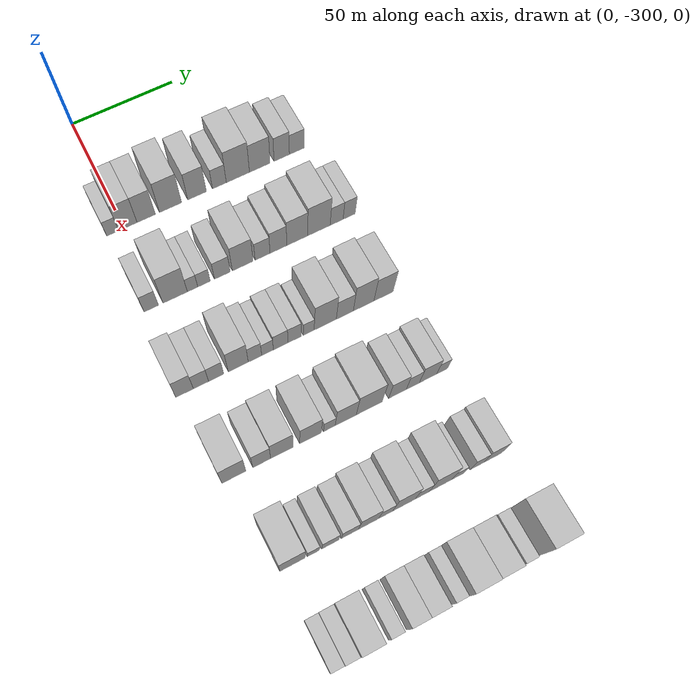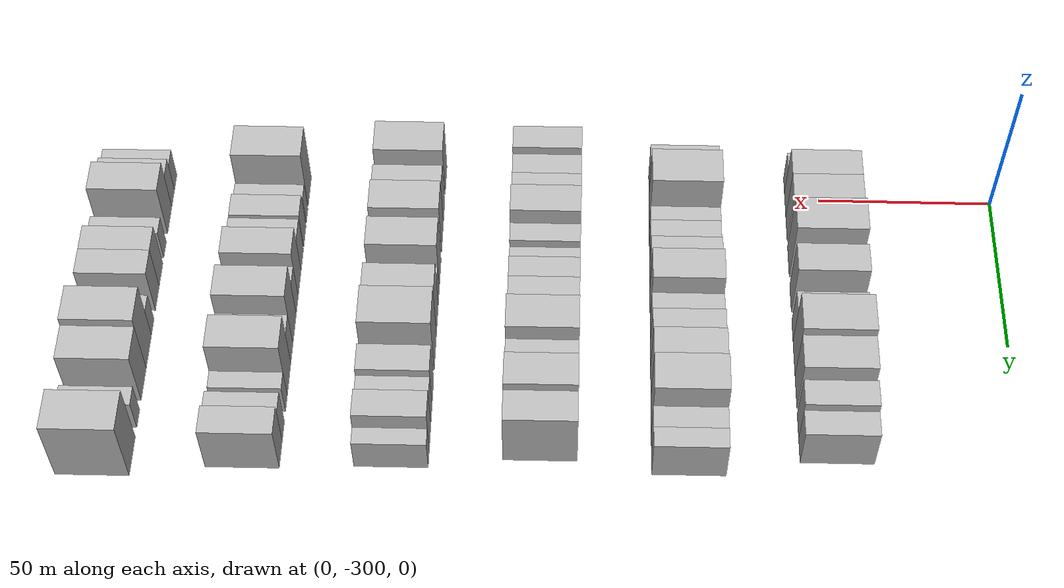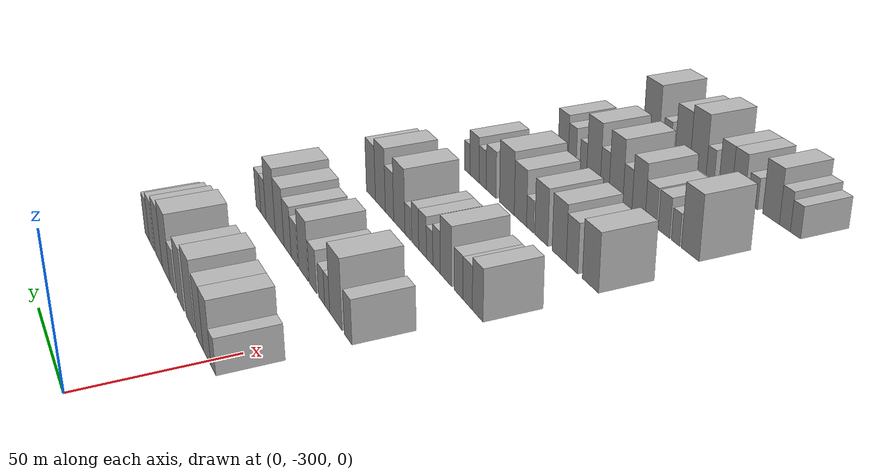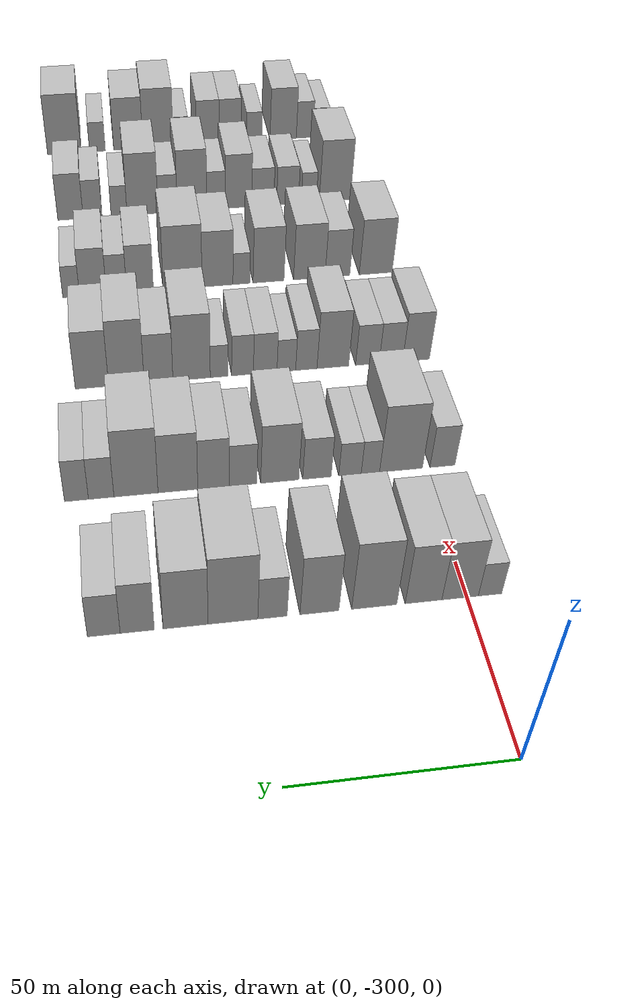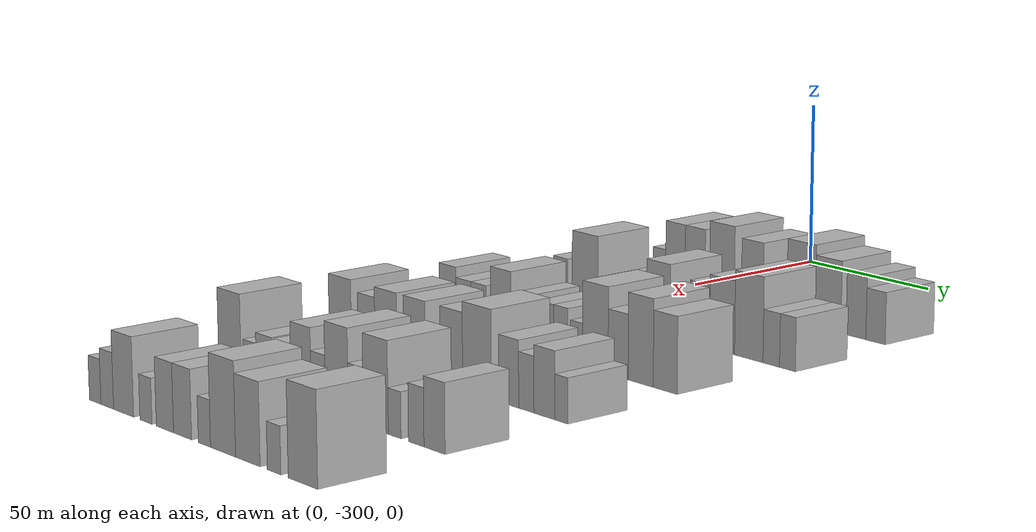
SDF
<sdf version="1.6">
 <world name="default">
  <model name="building_33">
   <static>1</static>
   <pose>50.0000 -305.4539 0 0.000000 0.000000 0.000000</pose>
   <link name="link">
    <pose>0 0 6.00 0 0 0</pose>
    <collision name="collision"><geometry><box><size>20.0000 5.6317 12.0000</size></box></geometry></collision>
    <visual name="visual">
     <cast_shadows>0</cast_shadows>
     <geometry><box><size>20.0000 5.6317 12.0000</size></box></geometry>
     <material>
      <script>
       <uri>model://HANNAS_wall/materials/scripts</uri>
       <uri>model://HANNAS_wall/materials/textures</uri>
       <name>vrc/HANNAS_wall</name>
      </script>
     </material>
    </visual>
   </link>
  </model>
  <model name="building_34">
   <static>1</static>
   <pose>50.0000 -298.2735 0 0.000000 0.000000 0.000000</pose>
   <link name="link">
    <pose>0 0 10.50 0 0 0</pose>
    <collision name="collision"><geometry><box><size>20.0000 8.7291 21.0000</size></box></geometry></collision>
    <visual name="visual">
     <cast_shadows>0</cast_shadows>
     <geometry><box><size>20.0000 8.7291 21.0000</size></box></geometry>
     <material>
      <script>
       <uri>model://HANNAS_wall/materials/scripts</uri>
       <uri>model://HANNAS_wall/materials/textures</uri>
       <name>vrc/HANNAS_wall</name>
      </script>
     </material>
    </visual>
   </link>
  </model>
  <model name="building_35">
   <static>1</static>
   <pose>50.0000 -289.5481 0 0.000000 0.000000 0.000000</pose>
   <link name="link">
    <pose>0 0 10.50 0 0 0</pose>
    <collision name="collision"><geometry><box><size>20.0000 8.7217 21.0000</size></box></geometry></collision>
    <visual name="visual">
     <cast_shadows>0</cast_shadows>
     <geometry><box><size>20.0000 8.7217 21.0000</size></box></geometry>
     <material>
      <script>
       <uri>model://HANNAS_wall/materials/scripts</uri>
       <uri>model://HANNAS_wall/materials/textures</uri>
       <name>vrc/HANNAS_wall</name>
      </script>
     </material>
    </visual>
   </link>
  </model>
  <model name="building_36">
   <static>1</static>
   <pose>50.0000 -277.8640 0 0.000000 0.000000 0.000000</pose>
   <link name="link">
    <pose>0 0 12.00 0 0 0</pose>
    <collision name="collision"><geometry><box><size>20.0000 10.6465 24.0000</size></box></geometry></collision>
    <visual name="visual">
     <cast_shadows>0</cast_shadows>
     <geometry><box><size>20.0000 10.6465 24.0000</size></box></geometry>
     <material>
      <script>
       <uri>model://HANNAS_wall/materials/scripts</uri>
       <uri>model://HANNAS_wall/materials/textures</uri>
       <name>vrc/HANNAS_wall</name>
      </script>
     </material>
    </visual>
   </link>
  </model>
  <model name="building_37">
   <static>1</static>
   <pose>50.0000 -264.9912 0 0.000000 0.000000 0.000000</pose>
   <link name="link">
    <pose>0 0 10.50 0 0 0</pose>
    <collision name="collision"><geometry><box><size>20.0000 9.0991 21.0000</size></box></geometry></collision>
    <visual name="visual">
     <cast_shadows>0</cast_shadows>
     <geometry><box><size>20.0000 9.0991 21.0000</size></box></geometry>
     <material>
      <script>
       <uri>model://HANNAS_wall/materials/scripts</uri>
       <uri>model://HANNAS_wall/materials/textures</uri>
       <name>vrc/HANNAS_wall</name>
      </script>
     </material>
    </visual>
   </link>
  </model>
  <model name="building_38">
   <static>1</static>
   <pose>50.0000 -254.0415 0 0.000000 0.000000 0.000000</pose>
   <link name="link">
    <pose>0 0 7.50 0 0 0</pose>
    <collision name="collision"><geometry><box><size>20.0000 6.8003 15.0000</size></box></geometry></collision>
    <visual name="visual">
     <cast_shadows>0</cast_shadows>
     <geometry><box><size>20.0000 6.8003 15.0000</size></box></geometry>
     <material>
      <script>
       <uri>model://HANNAS_wall/materials/scripts</uri>
       <uri>model://HANNAS_wall/materials/textures</uri>
       <name>vrc/HANNAS_wall</name>
      </script>
     </material>
    </visual>
   </link>
  </model>
  <model name="building_39">
   <static>1</static>
   <pose>50.0000 -244.8946 0 0.000000 0.000000 0.000000</pose>
   <link name="link">
    <pose>0 0 12.00 0 0 0</pose>
    <collision name="collision"><geometry><box><size>20.0000 11.4935 24.0000</size></box></geometry></collision>
    <visual name="visual">
     <cast_shadows>0</cast_shadows>
     <geometry><box><size>20.0000 11.4935 24.0000</size></box></geometry>
     <material>
      <script>
       <uri>model://HANNAS_wall/materials/scripts</uri>
       <uri>model://HANNAS_wall/materials/textures</uri>
       <name>vrc/HANNAS_wall</name>
      </script>
     </material>
    </visual>
   </link>
  </model>
  <model name="building_40">
   <static>1</static>
   <pose>50.0000 -234.0083 0 0.000000 0.000000 0.000000</pose>
   <link name="link">
    <pose>0 0 10.50 0 0 0</pose>
    <collision name="collision"><geometry><box><size>20.0000 10.2791 21.0000</size></box></geometry></collision>
    <visual name="visual">
     <cast_shadows>0</cast_shadows>
     <geometry><box><size>20.0000 10.2791 21.0000</size></box></geometry>
     <material>
      <script>
       <uri>model://HANNAS_wall/materials/scripts</uri>
       <uri>model://HANNAS_wall/materials/textures</uri>
       <name>vrc/HANNAS_wall</name>
      </script>
     </material>
    </visual>
   </link>
  </model>
  <model name="building_41">
   <static>1</static>
   <pose>50.0000 -222.9935 0 0.000000 0.000000 0.000000</pose>
   <link name="link">
    <pose>0 0 9.00 0 0 0</pose>
    <collision name="collision"><geometry><box><size>20.0000 7.7505 18.0000</size></box></geometry></collision>
    <visual name="visual">
     <cast_shadows>0</cast_shadows>
     <geometry><box><size>20.0000 7.7505 18.0000</size></box></geometry>
     <material>
      <script>
       <uri>model://HANNAS_wall/materials/scripts</uri>
       <uri>model://HANNAS_wall/materials/textures</uri>
       <name>vrc/HANNAS_wall</name>
      </script>
     </material>
    </visual>
   </link>
  </model>
  <model name="building_42">
   <static>1</static>
   <pose>50.0000 -215.4051 0 0.000000 0.000000 0.000000</pose>
   <link name="link">
    <pose>0 0 7.50 0 0 0</pose>
    <collision name="collision"><geometry><box><size>20.0000 7.4261 15.0000</size></box></geometry></collision>
    <visual name="visual">
     <cast_shadows>0</cast_shadows>
     <geometry><box><size>20.0000 7.4261 15.0000</size></box></geometry>
     <material>
      <script>
       <uri>model://HANNAS_wall/materials/scripts</uri>
       <uri>model://HANNAS_wall/materials/textures</uri>
       <name>vrc/HANNAS_wall</name>
      </script>
     </material>
    </visual>
   </link>
  </model>
  <model name="building_175">
   <static>1</static>
   <pose>90.0000 -304.8814 0 0.000000 0.000000 0.000000</pose>
   <link name="link">
    <pose>0 0 7.50 0 0 0</pose>
    <collision name="collision"><geometry><box><size>20.0000 6.6616 15.0000</size></box></geometry></collision>
    <visual name="visual">
     <cast_shadows>0</cast_shadows>
     <geometry><box><size>20.0000 6.6616 15.0000</size></box></geometry>
     <material>
      <script>
       <uri>model://HANNAS_wall/materials/scripts</uri>
       <uri>model://HANNAS_wall/materials/textures</uri>
       <name>vrc/HANNAS_wall</name>
      </script>
     </material>
    </visual>
   </link>
  </model>
  <model name="building_176">
   <static>1</static>
   <pose>90.0000 -293.8821 0 0.000000 0.000000 0.000000</pose>
   <link name="link">
    <pose>0 0 12.00 0 0 0</pose>
    <collision name="collision"><geometry><box><size>20.0000 11.3371 24.0000</size></box></geometry></collision>
    <visual name="visual">
     <cast_shadows>0</cast_shadows>
     <geometry><box><size>20.0000 11.3371 24.0000</size></box></geometry>
     <material>
      <script>
       <uri>model://HANNAS_wall/materials/scripts</uri>
       <uri>model://HANNAS_wall/materials/textures</uri>
       <name>vrc/HANNAS_wall</name>
      </script>
     </material>
    </visual>
   </link>
  </model>
  <model name="building_177">
   <static>1</static>
   <pose>90.0000 -285.7855 0 0.000000 0.000000 0.000000</pose>
   <link name="link">
    <pose>0 0 6.00 0 0 0</pose>
    <collision name="collision"><geometry><box><size>20.0000 4.8560 12.0000</size></box></geometry></collision>
    <visual name="visual">
     <cast_shadows>0</cast_shadows>
     <geometry><box><size>20.0000 4.8560 12.0000</size></box></geometry>
     <material>
      <script>
       <uri>model://HANNAS_wall/materials/scripts</uri>
       <uri>model://HANNAS_wall/materials/textures</uri>
       <name>vrc/HANNAS_wall</name>
      </script>
     </material>
    </visual>
   </link>
  </model>
  <model name="building_178">
   <static>1</static>
   <pose>90.0000 -280.4226 0 0.000000 0.000000 0.000000</pose>
   <link name="link">
    <pose>0 0 6.00 0 0 0</pose>
    <collision name="collision"><geometry><box><size>20.0000 5.8699 12.0000</size></box></geometry></collision>
    <visual name="visual">
     <cast_shadows>0</cast_shadows>
     <geometry><box><size>20.0000 5.8699 12.0000</size></box></geometry>
     <material>
      <script>
       <uri>model://HANNAS_wall/materials/scripts</uri>
       <uri>model://HANNAS_wall/materials/textures</uri>
       <name>vrc/HANNAS_wall</name>
      </script>
     </material>
    </visual>
   </link>
  </model>
  <model name="building_179">
   <static>1</static>
   <pose>90.0000 -271.7702 0 0.000000 0.000000 0.000000</pose>
   <link name="link">
    <pose>0 0 7.50 0 0 0</pose>
    <collision name="collision"><geometry><box><size>20.0000 7.4349 15.0000</size></box></geometry></collision>
    <visual name="visual">
     <cast_shadows>0</cast_shadows>
     <geometry><box><size>20.0000 7.4349 15.0000</size></box></geometry>
     <material>
      <script>
       <uri>model://HANNAS_wall/materials/scripts</uri>
       <uri>model://HANNAS_wall/materials/textures</uri>
       <name>vrc/HANNAS_wall</name>
      </script>
     </material>
    </visual>
   </link>
  </model>
  <model name="building_180">
   <static>1</static>
   <pose>90.0000 -262.1089 0 0.000000 0.000000 0.000000</pose>
   <link name="link">
    <pose>0 0 10.50 0 0 0</pose>
    <collision name="collision"><geometry><box><size>20.0000 9.8876 21.0000</size></box></geometry></collision>
    <visual name="visual">
     <cast_shadows>0</cast_shadows>
     <geometry><box><size>20.0000 9.8876 21.0000</size></box></geometry>
     <material>
      <script>
       <uri>model://HANNAS_wall/materials/scripts</uri>
       <uri>model://HANNAS_wall/materials/textures</uri>
       <name>vrc/HANNAS_wall</name>
      </script>
     </material>
    </visual>
   </link>
  </model>
  <model name="building_181">
   <static>1</static>
   <pose>90.0000 -252.5925 0 0.000000 0.000000 0.000000</pose>
   <link name="link">
    <pose>0 0 7.50 0 0 0</pose>
    <collision name="collision"><geometry><box><size>20.0000 7.1453 15.0000</size></box></geometry></collision>
    <visual name="visual">
     <cast_shadows>0</cast_shadows>
     <geometry><box><size>20.0000 7.1453 15.0000</size></box></geometry>
     <material>
      <script>
       <uri>model://HANNAS_wall/materials/scripts</uri>
       <uri>model://HANNAS_wall/materials/textures</uri>
       <name>vrc/HANNAS_wall</name>
      </script>
     </material>
    </visual>
   </link>
  </model>
  <model name="building_182">
   <static>1</static>
   <pose>90.0000 -244.9927 0 0.000000 0.000000 0.000000</pose>
   <link name="link">
    <pose>0 0 9.00 0 0 0</pose>
    <collision name="collision"><geometry><box><size>20.0000 8.0541 18.0000</size></box></geometry></collision>
    <visual name="visual">
     <cast_shadows>0</cast_shadows>
     <geometry><box><size>20.0000 8.0541 18.0000</size></box></geometry>
     <material>
      <script>
       <uri>model://HANNAS_wall/materials/scripts</uri>
       <uri>model://HANNAS_wall/materials/textures</uri>
       <name>vrc/HANNAS_wall</name>
      </script>
     </material>
    </visual>
   </link>
  </model>
  <model name="building_183">
   <static>1</static>
   <pose>90.0000 -235.9026 0 0.000000 0.000000 0.000000</pose>
   <link name="link">
    <pose>0 0 10.50 0 0 0</pose>
    <collision name="collision"><geometry><box><size>20.0000 10.1261 21.0000</size></box></geometry></collision>
    <visual name="visual">
     <cast_shadows>0</cast_shadows>
     <geometry><box><size>20.0000 10.1261 21.0000</size></box></geometry>
     <material>
      <script>
       <uri>model://HANNAS_wall/materials/scripts</uri>
       <uri>model://HANNAS_wall/materials/textures</uri>
       <name>vrc/HANNAS_wall</name>
      </script>
     </material>
    </visual>
   </link>
  </model>
  <model name="building_184">
   <static>1</static>
   <pose>90.0000 -225.2457 0 0.000000 0.000000 0.000000</pose>
   <link name="link">
    <pose>0 0 12.00 0 0 0</pose>
    <collision name="collision"><geometry><box><size>20.0000 11.1877 24.0000</size></box></geometry></collision>
    <visual name="visual">
     <cast_shadows>0</cast_shadows>
     <geometry><box><size>20.0000 11.1877 24.0000</size></box></geometry>
     <material>
      <script>
       <uri>model://HANNAS_wall/materials/scripts</uri>
       <uri>model://HANNAS_wall/materials/textures</uri>
       <name>vrc/HANNAS_wall</name>
      </script>
     </material>
    </visual>
   </link>
  </model>
  <model name="building_185">
   <static>1</static>
   <pose>90.0000 -216.4386 0 0.000000 0.000000 0.000000</pose>
   <link name="link">
    <pose>0 0 7.50 0 0 0</pose>
    <collision name="collision"><geometry><box><size>20.0000 6.4265 15.0000</size></box></geometry></collision>
    <visual name="visual">
     <cast_shadows>0</cast_shadows>
     <geometry><box><size>20.0000 6.4265 15.0000</size></box></geometry>
     <material>
      <script>
       <uri>model://HANNAS_wall/materials/scripts</uri>
       <uri>model://HANNAS_wall/materials/textures</uri>
       <name>vrc/HANNAS_wall</name>
      </script>
     </material>
    </visual>
   </link>
  </model>
  <model name="building_186">
   <static>1</static>
   <pose>90.0000 -210.2189 0 0.000000 0.000000 0.000000</pose>
   <link name="link">
    <pose>0 0 7.50 0 0 0</pose>
    <collision name="collision"><geometry><box><size>20.0000 6.0128 15.0000</size></box></geometry></collision>
    <visual name="visual">
     <cast_shadows>0</cast_shadows>
     <geometry><box><size>20.0000 6.0128 15.0000</size></box></geometry>
     <material>
      <script>
       <uri>model://HANNAS_wall/materials/scripts</uri>
       <uri>model://HANNAS_wall/materials/textures</uri>
       <name>vrc/HANNAS_wall</name>
      </script>
     </material>
    </visual>
   </link>
  </model>
  <model name="building_314">
   <static>1</static>
   <pose>130.0000 -307.9470 0 0.000000 0.000000 0.000000</pose>
   <link name="link">
    <pose>0 0 9.00 0 0 0</pose>
    <collision name="collision"><geometry><box><size>20.0000 7.8398 18.0000</size></box></geometry></collision>
    <visual name="visual">
     <cast_shadows>0</cast_shadows>
     <geometry><box><size>20.0000 7.8398 18.0000</size></box></geometry>
     <material>
      <script>
       <uri>model://HANNAS_wall/materials/scripts</uri>
       <uri>model://HANNAS_wall/materials/textures</uri>
       <name>vrc/HANNAS_wall</name>
      </script>
     </material>
    </visual>
   </link>
  </model>
  <model name="building_315">
   <static>1</static>
   <pose>130.0000 -300.5937 0 0.000000 0.000000 0.000000</pose>
   <link name="link">
    <pose>0 0 7.50 0 0 0</pose>
    <collision name="collision"><geometry><box><size>20.0000 6.8666 15.0000</size></box></geometry></collision>
    <visual name="visual">
     <cast_shadows>0</cast_shadows>
     <geometry><box><size>20.0000 6.8666 15.0000</size></box></geometry>
     <material>
      <script>
       <uri>model://HANNAS_wall/materials/scripts</uri>
       <uri>model://HANNAS_wall/materials/textures</uri>
       <name>vrc/HANNAS_wall</name>
      </script>
     </material>
    </visual>
   </link>
  </model>
  <model name="building_316">
   <static>1</static>
   <pose>130.0000 -293.7358 0 0.000000 0.000000 0.000000</pose>
   <link name="link">
    <pose>0 0 7.50 0 0 0</pose>
    <collision name="collision"><geometry><box><size>20.0000 6.8492 15.0000</size></box></geometry></collision>
    <visual name="visual">
     <cast_shadows>0</cast_shadows>
     <geometry><box><size>20.0000 6.8492 15.0000</size></box></geometry>
     <material>
      <script>
       <uri>model://HANNAS_wall/materials/scripts</uri>
       <uri>model://HANNAS_wall/materials/textures</uri>
       <name>vrc/HANNAS_wall</name>
      </script>
     </material>
    </visual>
   </link>
  </model>
  <model name="building_317">
   <static>1</static>
   <pose>130.0000 -283.7377 0 0.000000 0.000000 0.000000</pose>
   <link name="link">
    <pose>0 0 10.50 0 0 0</pose>
    <collision name="collision"><geometry><box><size>20.0000 9.1470 21.0000</size></box></geometry></collision>
    <visual name="visual">
     <cast_shadows>0</cast_shadows>
     <geometry><box><size>20.0000 9.1470 21.0000</size></box></geometry>
     <material>
      <script>
       <uri>model://HANNAS_wall/materials/scripts</uri>
       <uri>model://HANNAS_wall/materials/textures</uri>
       <name>vrc/HANNAS_wall</name>
      </script>
     </material>
    </visual>
   </link>
  </model>
  <model name="building_318">
   <static>1</static>
   <pose>130.0000 -276.0966 0 0.000000 0.000000 0.000000</pose>
   <link name="link">
    <pose>0 0 7.50 0 0 0</pose>
    <collision name="collision"><geometry><box><size>20.0000 6.1353 15.0000</size></box></geometry></collision>
    <visual name="visual">
     <cast_shadows>0</cast_shadows>
     <geometry><box><size>20.0000 6.1353 15.0000</size></box></geometry>
     <material>
      <script>
       <uri>model://HANNAS_wall/materials/scripts</uri>
       <uri>model://HANNAS_wall/materials/textures</uri>
       <name>vrc/HANNAS_wall</name>
      </script>
     </material>
    </visual>
   </link>
  </model>
  <model name="building_319">
   <static>1</static>
   <pose>130.0000 -270.3441 0 0.000000 0.000000 0.000000</pose>
   <link name="link">
    <pose>0 0 6.00 0 0 0</pose>
    <collision name="collision"><geometry><box><size>20.0000 5.3697 12.0000</size></box></geometry></collision>
    <visual name="visual">
     <cast_shadows>0</cast_shadows>
     <geometry><box><size>20.0000 5.3697 12.0000</size></box></geometry>
     <material>
      <script>
       <uri>model://HANNAS_wall/materials/scripts</uri>
       <uri>model://HANNAS_wall/materials/textures</uri>
       <name>vrc/HANNAS_wall</name>
      </script>
     </material>
    </visual>
   </link>
  </model>
  <model name="building_320">
   <static>1</static>
   <pose>130.0000 -264.2904 0 0.000000 0.000000 0.000000</pose>
   <link name="link">
    <pose>0 0 7.50 0 0 0</pose>
    <collision name="collision"><geometry><box><size>20.0000 6.7379 15.0000</size></box></geometry></collision>
    <visual name="visual">
     <cast_shadows>0</cast_shadows>
     <geometry><box><size>20.0000 6.7379 15.0000</size></box></geometry>
     <material>
      <script>
       <uri>model://HANNAS_wall/materials/scripts</uri>
       <uri>model://HANNAS_wall/materials/textures</uri>
       <name>vrc/HANNAS_wall</name>
      </script>
     </material>
    </visual>
   </link>
  </model>
  <model name="building_321">
   <static>1</static>
   <pose>130.0000 -257.8214 0 0.000000 0.000000 0.000000</pose>
   <link name="link">
    <pose>0 0 7.50 0 0 0</pose>
    <collision name="collision"><geometry><box><size>20.0000 6.2001 15.0000</size></box></geometry></collision>
    <visual name="visual">
     <cast_shadows>0</cast_shadows>
     <geometry><box><size>20.0000 6.2001 15.0000</size></box></geometry>
     <material>
      <script>
       <uri>model://HANNAS_wall/materials/scripts</uri>
       <uri>model://HANNAS_wall/materials/textures</uri>
       <name>vrc/HANNAS_wall</name>
      </script>
     </material>
    </visual>
   </link>
  </model>
  <model name="building_322">
   <static>1</static>
   <pose>130.0000 -251.1896 0 0.000000 0.000000 0.000000</pose>
   <link name="link">
    <pose>0 0 6.00 0 0 0</pose>
    <collision name="collision"><geometry><box><size>20.0000 5.0634 12.0000</size></box></geometry></collision>
    <visual name="visual">
     <cast_shadows>0</cast_shadows>
     <geometry><box><size>20.0000 5.0634 12.0000</size></box></geometry>
     <material>
      <script>
       <uri>model://HANNAS_wall/materials/scripts</uri>
       <uri>model://HANNAS_wall/materials/textures</uri>
       <name>vrc/HANNAS_wall</name>
      </script>
     </material>
    </visual>
   </link>
  </model>
  <model name="building_323">
   <static>1</static>
   <pose>130.0000 -243.3919 0 0.000000 0.000000 0.000000</pose>
   <link name="link">
    <pose>0 0 12.00 0 0 0</pose>
    <collision name="collision"><geometry><box><size>20.0000 10.5321 24.0000</size></box></geometry></collision>
    <visual name="visual">
     <cast_shadows>0</cast_shadows>
     <geometry><box><size>20.0000 10.5321 24.0000</size></box></geometry>
     <material>
      <script>
       <uri>model://HANNAS_wall/materials/scripts</uri>
       <uri>model://HANNAS_wall/materials/textures</uri>
       <name>vrc/HANNAS_wall</name>
      </script>
     </material>
    </visual>
   </link>
  </model>
  <model name="building_324">
   <static>1</static>
   <pose>130.0000 -234.0833 0 0.000000 0.000000 0.000000</pose>
   <link name="link">
    <pose>0 0 9.00 0 0 0</pose>
    <collision name="collision"><geometry><box><size>20.0000 8.0850 18.0000</size></box></geometry></collision>
    <visual name="visual">
     <cast_shadows>0</cast_shadows>
     <geometry><box><size>20.0000 8.0850 18.0000</size></box></geometry>
     <material>
      <script>
       <uri>model://HANNAS_wall/materials/scripts</uri>
       <uri>model://HANNAS_wall/materials/textures</uri>
       <name>vrc/HANNAS_wall</name>
      </script>
     </material>
    </visual>
   </link>
  </model>
  <model name="building_325">
   <static>1</static>
   <pose>130.0000 -225.0821 0 0.000000 0.000000 0.000000</pose>
   <link name="link">
    <pose>0 0 12.00 0 0 0</pose>
    <collision name="collision"><geometry><box><size>20.0000 9.9175 24.0000</size></box></geometry></collision>
    <visual name="visual">
     <cast_shadows>0</cast_shadows>
     <geometry><box><size>20.0000 9.9175 24.0000</size></box></geometry>
     <material>
      <script>
       <uri>model://HANNAS_wall/materials/scripts</uri>
       <uri>model://HANNAS_wall/materials/textures</uri>
       <name>vrc/HANNAS_wall</name>
      </script>
     </material>
    </visual>
   </link>
  </model>
  <model name="building_326">
   <static>1</static>
   <pose>130.0000 -215.4859 0 0.000000 0.000000 0.000000</pose>
   <link name="link">
    <pose>0 0 10.50 0 0 0</pose>
    <collision name="collision"><geometry><box><size>20.0000 9.2749 21.0000</size></box></geometry></collision>
    <visual name="visual">
     <cast_shadows>0</cast_shadows>
     <geometry><box><size>20.0000 9.2749 21.0000</size></box></geometry>
     <material>
      <script>
       <uri>model://HANNAS_wall/materials/scripts</uri>
       <uri>model://HANNAS_wall/materials/textures</uri>
       <name>vrc/HANNAS_wall</name>
      </script>
     </material>
    </visual>
   </link>
  </model>
  <model name="building_449">
   <static>1</static>
   <pose>170.0000 -305.1457 0 0.000000 0.000000 0.000000</pose>
   <link name="link">
    <pose>0 0 10.50 0 0 0</pose>
    <collision name="collision"><geometry><box><size>20.0000 10.4756 21.0000</size></box></geometry></collision>
    <visual name="visual">
     <cast_shadows>0</cast_shadows>
     <geometry><box><size>20.0000 10.4756 21.0000</size></box></geometry>
     <material>
      <script>
       <uri>model://HANNAS_wall/materials/scripts</uri>
       <uri>model://HANNAS_wall/materials/textures</uri>
       <name>vrc/HANNAS_wall</name>
      </script>
     </material>
    </visual>
   </link>
  </model>
  <model name="building_450">
   <static>1</static>
   <pose>170.0000 -292.9837 0 0.000000 0.000000 0.000000</pose>
   <link name="link">
    <pose>0 0 9.00 0 0 0</pose>
    <collision name="collision"><geometry><box><size>20.0000 7.8484 18.0000</size></box></geometry></collision>
    <visual name="visual">
     <cast_shadows>0</cast_shadows>
     <geometry><box><size>20.0000 7.8484 18.0000</size></box></geometry>
     <material>
      <script>
       <uri>model://HANNAS_wall/materials/scripts</uri>
       <uri>model://HANNAS_wall/materials/textures</uri>
       <name>vrc/HANNAS_wall</name>
      </script>
     </material>
    </visual>
   </link>
  </model>
  <model name="building_451">
   <static>1</static>
   <pose>170.0000 -284.1084 0 0.000000 0.000000 0.000000</pose>
   <link name="link">
    <pose>0 0 10.50 0 0 0</pose>
    <collision name="collision"><geometry><box><size>20.0000 9.9020 21.0000</size></box></geometry></collision>
    <visual name="visual">
     <cast_shadows>0</cast_shadows>
     <geometry><box><size>20.0000 9.9020 21.0000</size></box></geometry>
     <material>
      <script>
       <uri>model://HANNAS_wall/materials/scripts</uri>
       <uri>model://HANNAS_wall/materials/textures</uri>
       <name>vrc/HANNAS_wall</name>
      </script>
     </material>
    </visual>
   </link>
  </model>
  <model name="building_452">
   <static>1</static>
   <pose>170.0000 -271.3148 0 0.000000 0.000000 0.000000</pose>
   <link name="link">
    <pose>0 0 10.50 0 0 0</pose>
    <collision name="collision"><geometry><box><size>20.0000 9.6854 21.0000</size></box></geometry></collision>
    <visual name="visual">
     <cast_shadows>0</cast_shadows>
     <geometry><box><size>20.0000 9.6854 21.0000</size></box></geometry>
     <material>
      <script>
       <uri>model://HANNAS_wall/materials/scripts</uri>
       <uri>model://HANNAS_wall/materials/textures</uri>
       <name>vrc/HANNAS_wall</name>
      </script>
     </material>
    </visual>
   </link>
  </model>
  <model name="building_453">
   <static>1</static>
   <pose>170.0000 -262.8410 0 0.000000 0.000000 0.000000</pose>
   <link name="link">
    <pose>0 0 6.00 0 0 0</pose>
    <collision name="collision"><geometry><box><size>20.0000 5.2621 12.0000</size></box></geometry></collision>
    <visual name="visual">
     <cast_shadows>0</cast_shadows>
     <geometry><box><size>20.0000 5.2621 12.0000</size></box></geometry>
     <material>
      <script>
       <uri>model://HANNAS_wall/materials/scripts</uri>
       <uri>model://HANNAS_wall/materials/textures</uri>
       <name>vrc/HANNAS_wall</name>
      </script>
     </material>
    </visual>
   </link>
  </model>
  <model name="building_454">
   <static>1</static>
   <pose>170.0000 -255.4043 0 0.000000 0.000000 0.000000</pose>
   <link name="link">
    <pose>0 0 10.50 0 0 0</pose>
    <collision name="collision"><geometry><box><size>20.0000 9.6114 21.0000</size></box></geometry></collision>
    <visual name="visual">
     <cast_shadows>0</cast_shadows>
     <geometry><box><size>20.0000 9.6114 21.0000</size></box></geometry>
     <material>
      <script>
       <uri>model://HANNAS_wall/materials/scripts</uri>
       <uri>model://HANNAS_wall/materials/textures</uri>
       <name>vrc/HANNAS_wall</name>
      </script>
     </material>
    </visual>
   </link>
  </model>
  <model name="building_455">
   <static>1</static>
   <pose>170.0000 -244.6207 0 0.000000 0.000000 0.000000</pose>
   <link name="link">
    <pose>0 0 12.00 0 0 0</pose>
    <collision name="collision"><geometry><box><size>20.0000 11.9559 24.0000</size></box></geometry></collision>
    <visual name="visual">
     <cast_shadows>0</cast_shadows>
     <geometry><box><size>20.0000 11.9559 24.0000</size></box></geometry>
     <material>
      <script>
       <uri>model://HANNAS_wall/materials/scripts</uri>
       <uri>model://HANNAS_wall/materials/textures</uri>
       <name>vrc/HANNAS_wall</name>
      </script>
     </material>
    </visual>
   </link>
  </model>
  <model name="building_456">
   <static>1</static>
   <pose>170.0000 -231.5341 0 0.000000 0.000000 0.000000</pose>
   <link name="link">
    <pose>0 0 9.00 0 0 0</pose>
    <collision name="collision"><geometry><box><size>20.0000 8.2172 18.0000</size></box></geometry></collision>
    <visual name="visual">
     <cast_shadows>0</cast_shadows>
     <geometry><box><size>20.0000 8.2172 18.0000</size></box></geometry>
     <material>
      <script>
       <uri>model://HANNAS_wall/materials/scripts</uri>
       <uri>model://HANNAS_wall/materials/textures</uri>
       <name>vrc/HANNAS_wall</name>
      </script>
     </material>
    </visual>
   </link>
  </model>
  <model name="building_457">
   <static>1</static>
   <pose>170.0000 -224.3427 0 0.000000 0.000000 0.000000</pose>
   <link name="link">
    <pose>0 0 7.50 0 0 0</pose>
    <collision name="collision"><geometry><box><size>20.0000 6.1657 15.0000</size></box></geometry></collision>
    <visual name="visual">
     <cast_shadows>0</cast_shadows>
     <geometry><box><size>20.0000 6.1657 15.0000</size></box></geometry>
     <material>
      <script>
       <uri>model://HANNAS_wall/materials/scripts</uri>
       <uri>model://HANNAS_wall/materials/textures</uri>
       <name>vrc/HANNAS_wall</name>
      </script>
     </material>
    </visual>
   </link>
  </model>
  <model name="building_458">
   <static>1</static>
   <pose>170.0000 -217.1695 0 0.000000 0.000000 0.000000</pose>
   <link name="link">
    <pose>0 0 9.00 0 0 0</pose>
    <collision name="collision"><geometry><box><size>20.0000 8.1807 18.0000</size></box></geometry></collision>
    <visual name="visual">
     <cast_shadows>0</cast_shadows>
     <geometry><box><size>20.0000 8.1807 18.0000</size></box></geometry>
     <material>
      <script>
       <uri>model://HANNAS_wall/materials/scripts</uri>
       <uri>model://HANNAS_wall/materials/textures</uri>
       <name>vrc/HANNAS_wall</name>
      </script>
     </material>
    </visual>
   </link>
  </model>
  <model name="building_459">
   <static>1</static>
   <pose>170.0000 -210.5353 0 0.000000 0.000000 0.000000</pose>
   <link name="link">
    <pose>0 0 6.00 0 0 0</pose>
    <collision name="collision"><geometry><box><size>20.0000 5.0875 12.0000</size></box></geometry></collision>
    <visual name="visual">
     <cast_shadows>0</cast_shadows>
     <geometry><box><size>20.0000 5.0875 12.0000</size></box></geometry>
     <material>
      <script>
       <uri>model://HANNAS_wall/materials/scripts</uri>
       <uri>model://HANNAS_wall/materials/textures</uri>
       <name>vrc/HANNAS_wall</name>
      </script>
     </material>
    </visual>
   </link>
  </model>
  <model name="building_582">
   <static>1</static>
   <pose>210.0000 -300.0272 0 0.000000 0.000000 0.000000</pose>
   <link name="link">
    <pose>0 0 12.00 0 0 0</pose>
    <collision name="collision"><geometry><box><size>20.0000 10.6962 24.0000</size></box></geometry></collision>
    <visual name="visual">
     <cast_shadows>0</cast_shadows>
     <geometry><box><size>20.0000 10.6962 24.0000</size></box></geometry>
     <material>
      <script>
       <uri>model://HANNAS_wall/materials/scripts</uri>
       <uri>model://HANNAS_wall/materials/textures</uri>
       <name>vrc/HANNAS_wall</name>
      </script>
     </material>
    </visual>
   </link>
  </model>
  <model name="building_583">
   <static>1</static>
   <pose>210.0000 -291.1125 0 0.000000 0.000000 0.000000</pose>
   <link name="link">
    <pose>0 0 6.00 0 0 0</pose>
    <collision name="collision"><geometry><box><size>20.0000 5.1332 12.0000</size></box></geometry></collision>
    <visual name="visual">
     <cast_shadows>0</cast_shadows>
     <geometry><box><size>20.0000 5.1332 12.0000</size></box></geometry>
     <material>
      <script>
       <uri>model://HANNAS_wall/materials/scripts</uri>
       <uri>model://HANNAS_wall/materials/textures</uri>
       <name>vrc/HANNAS_wall</name>
      </script>
     </material>
    </visual>
   </link>
  </model>
  <model name="building_584">
   <static>1</static>
   <pose>210.0000 -283.8426 0 0.000000 0.000000 0.000000</pose>
   <link name="link">
    <pose>0 0 7.50 0 0 0</pose>
    <collision name="collision"><geometry><box><size>20.0000 7.4065 15.0000</size></box></geometry></collision>
    <visual name="visual">
     <cast_shadows>0</cast_shadows>
     <geometry><box><size>20.0000 7.4065 15.0000</size></box></geometry>
     <material>
      <script>
       <uri>model://HANNAS_wall/materials/scripts</uri>
       <uri>model://HANNAS_wall/materials/textures</uri>
       <name>vrc/HANNAS_wall</name>
      </script>
     </material>
    </visual>
   </link>
  </model>
  <model name="building_585">
   <static>1</static>
   <pose>210.0000 -275.3901 0 0.000000 0.000000 0.000000</pose>
   <link name="link">
    <pose>0 0 7.50 0 0 0</pose>
    <collision name="collision"><geometry><box><size>20.0000 7.4986 15.0000</size></box></geometry></collision>
    <visual name="visual">
     <cast_shadows>0</cast_shadows>
     <geometry><box><size>20.0000 7.4986 15.0000</size></box></geometry>
     <material>
      <script>
       <uri>model://HANNAS_wall/materials/scripts</uri>
       <uri>model://HANNAS_wall/materials/textures</uri>
       <name>vrc/HANNAS_wall</name>
      </script>
     </material>
    </visual>
   </link>
  </model>
  <model name="building_586">
   <static>1</static>
   <pose>210.0000 -267.1776 0 0.000000 0.000000 0.000000</pose>
   <link name="link">
    <pose>0 0 10.50 0 0 0</pose>
    <collision name="collision"><geometry><box><size>20.0000 8.9263 21.0000</size></box></geometry></collision>
    <visual name="visual">
     <cast_shadows>0</cast_shadows>
     <geometry><box><size>20.0000 8.9263 21.0000</size></box></geometry>
     <material>
      <script>
       <uri>model://HANNAS_wall/materials/scripts</uri>
       <uri>model://HANNAS_wall/materials/textures</uri>
       <name>vrc/HANNAS_wall</name>
      </script>
     </material>
    </visual>
   </link>
  </model>
  <model name="building_587">
   <static>1</static>
   <pose>210.0000 -259.6026 0 0.000000 0.000000 0.000000</pose>
   <link name="link">
    <pose>0 0 7.50 0 0 0</pose>
    <collision name="collision"><geometry><box><size>20.0000 6.2238 15.0000</size></box></geometry></collision>
    <visual name="visual">
     <cast_shadows>0</cast_shadows>
     <geometry><box><size>20.0000 6.2238 15.0000</size></box></geometry>
     <material>
      <script>
       <uri>model://HANNAS_wall/materials/scripts</uri>
       <uri>model://HANNAS_wall/materials/textures</uri>
       <name>vrc/HANNAS_wall</name>
      </script>
     </material>
    </visual>
   </link>
  </model>
  <model name="building_588">
   <static>1</static>
   <pose>210.0000 -251.5192 0 0.000000 0.000000 0.000000</pose>
   <link name="link">
    <pose>0 0 12.00 0 0 0</pose>
    <collision name="collision"><geometry><box><size>20.0000 9.9429 24.0000</size></box></geometry></collision>
    <visual name="visual">
     <cast_shadows>0</cast_shadows>
     <geometry><box><size>20.0000 9.9429 24.0000</size></box></geometry>
     <material>
      <script>
       <uri>model://HANNAS_wall/materials/scripts</uri>
       <uri>model://HANNAS_wall/materials/textures</uri>
       <name>vrc/HANNAS_wall</name>
      </script>
     </material>
    </visual>
   </link>
  </model>
  <model name="building_589">
   <static>1</static>
   <pose>210.0000 -243.3588 0 0.000000 0.000000 0.000000</pose>
   <link name="link">
    <pose>0 0 7.50 0 0 0</pose>
    <collision name="collision"><geometry><box><size>20.0000 6.3780 15.0000</size></box></geometry></collision>
    <visual name="visual">
     <cast_shadows>0</cast_shadows>
     <geometry><box><size>20.0000 6.3780 15.0000</size></box></geometry>
     <material>
      <script>
       <uri>model://HANNAS_wall/materials/scripts</uri>
       <uri>model://HANNAS_wall/materials/textures</uri>
       <name>vrc/HANNAS_wall</name>
      </script>
     </material>
    </visual>
   </link>
  </model>
  <model name="building_590">
   <static>1</static>
   <pose>210.0000 -235.0023 0 0.000000 0.000000 0.000000</pose>
   <link name="link">
    <pose>0 0 12.00 0 0 0</pose>
    <collision name="collision"><geometry><box><size>20.0000 10.3348 24.0000</size></box></geometry></collision>
    <visual name="visual">
     <cast_shadows>0</cast_shadows>
     <geometry><box><size>20.0000 10.3348 24.0000</size></box></geometry>
     <material>
      <script>
       <uri>model://HANNAS_wall/materials/scripts</uri>
       <uri>model://HANNAS_wall/materials/textures</uri>
       <name>vrc/HANNAS_wall</name>
      </script>
     </material>
    </visual>
   </link>
  </model>
  <model name="building_591">
   <static>1</static>
   <pose>210.0000 -227.1998 0 0.000000 0.000000 0.000000</pose>
   <link name="link">
    <pose>0 0 6.00 0 0 0</pose>
    <collision name="collision"><geometry><box><size>20.0000 5.2702 12.0000</size></box></geometry></collision>
    <visual name="visual">
     <cast_shadows>0</cast_shadows>
     <geometry><box><size>20.0000 5.2702 12.0000</size></box></geometry>
     <material>
      <script>
       <uri>model://HANNAS_wall/materials/scripts</uri>
       <uri>model://HANNAS_wall/materials/textures</uri>
       <name>vrc/HANNAS_wall</name>
      </script>
     </material>
    </visual>
   </link>
  </model>
  <model name="building_592">
   <static>1</static>
   <pose>210.0000 -218.4390 0 0.000000 0.000000 0.000000</pose>
   <link name="link">
    <pose>0 0 7.50 0 0 0</pose>
    <collision name="collision"><geometry><box><size>20.0000 6.2514 15.0000</size></box></geometry></collision>
    <visual name="visual">
     <cast_shadows>0</cast_shadows>
     <geometry><box><size>20.0000 6.2514 15.0000</size></box></geometry>
     <material>
      <script>
       <uri>model://HANNAS_wall/materials/scripts</uri>
       <uri>model://HANNAS_wall/materials/textures</uri>
       <name>vrc/HANNAS_wall</name>
      </script>
     </material>
    </visual>
   </link>
  </model>
  <model name="building_593">
   <static>1</static>
   <pose>210.0000 -211.1372 0 0.000000 0.000000 0.000000</pose>
   <link name="link">
    <pose>0 0 9.00 0 0 0</pose>
    <collision name="collision"><geometry><box><size>20.0000 8.3521 18.0000</size></box></geometry></collision>
    <visual name="visual">
     <cast_shadows>0</cast_shadows>
     <geometry><box><size>20.0000 8.3521 18.0000</size></box></geometry>
     <material>
      <script>
       <uri>model://HANNAS_wall/materials/scripts</uri>
       <uri>model://HANNAS_wall/materials/textures</uri>
       <name>vrc/HANNAS_wall</name>
      </script>
     </material>
    </visual>
   </link>
  </model>
  <model name="building_723">
   <static>1</static>
   <pose>250.0000 -302.6384 0 0.000000 0.000000 0.000000</pose>
   <link name="link">
    <pose>0 0 6.00 0 0 0</pose>
    <collision name="collision"><geometry><box><size>20.0000 5.6649 12.0000</size></box></geometry></collision>
    <visual name="visual">
     <cast_shadows>0</cast_shadows>
     <geometry><box><size>20.0000 5.6649 12.0000</size></box></geometry>
     <material>
      <script>
       <uri>model://HANNAS_wall/materials/scripts</uri>
       <uri>model://HANNAS_wall/materials/textures</uri>
       <name>vrc/HANNAS_wall</name>
      </script>
     </material>
    </visual>
   </link>
  </model>
  <model name="building_724">
   <static>1</static>
   <pose>250.0000 -296.7237 0 0.000000 0.000000 0.000000</pose>
   <link name="link">
    <pose>0 0 7.50 0 0 0</pose>
    <collision name="collision"><geometry><box><size>20.0000 6.1646 15.0000</size></box></geometry></collision>
    <visual name="visual">
     <cast_shadows>0</cast_shadows>
     <geometry><box><size>20.0000 6.1646 15.0000</size></box></geometry>
     <material>
      <script>
       <uri>model://HANNAS_wall/materials/scripts</uri>
       <uri>model://HANNAS_wall/materials/textures</uri>
       <name>vrc/HANNAS_wall</name>
      </script>
     </material>
    </visual>
   </link>
  </model>
  <model name="building_725">
   <static>1</static>
   <pose>250.0000 -288.8156 0 0.000000 0.000000 0.000000</pose>
   <link name="link">
    <pose>0 0 10.50 0 0 0</pose>
    <collision name="collision"><geometry><box><size>20.0000 9.6516 21.0000</size></box></geometry></collision>
    <visual name="visual">
     <cast_shadows>0</cast_shadows>
     <geometry><box><size>20.0000 9.6516 21.0000</size></box></geometry>
     <material>
      <script>
       <uri>model://HANNAS_wall/materials/scripts</uri>
       <uri>model://HANNAS_wall/materials/textures</uri>
       <name>vrc/HANNAS_wall</name>
      </script>
     </material>
    </visual>
   </link>
  </model>
  <model name="building_726">
   <static>1</static>
   <pose>250.0000 -278.1491 0 0.000000 0.000000 0.000000</pose>
   <link name="link">
    <pose>0 0 6.00 0 0 0</pose>
    <collision name="collision"><geometry><box><size>20.0000 5.6814 12.0000</size></box></geometry></collision>
    <visual name="visual">
     <cast_shadows>0</cast_shadows>
     <geometry><box><size>20.0000 5.6814 12.0000</size></box></geometry>
     <material>
      <script>
       <uri>model://HANNAS_wall/materials/scripts</uri>
       <uri>model://HANNAS_wall/materials/textures</uri>
       <name>vrc/HANNAS_wall</name>
      </script>
     </material>
    </visual>
   </link>
  </model>
  <model name="building_727">
   <static>1</static>
   <pose>250.0000 -269.3305 0 0.000000 0.000000 0.000000</pose>
   <link name="link">
    <pose>0 0 9.00 0 0 0</pose>
    <collision name="collision"><geometry><box><size>20.0000 7.9558 18.0000</size></box></geometry></collision>
    <visual name="visual">
     <cast_shadows>0</cast_shadows>
     <geometry><box><size>20.0000 7.9558 18.0000</size></box></geometry>
     <material>
      <script>
       <uri>model://HANNAS_wall/materials/scripts</uri>
       <uri>model://HANNAS_wall/materials/textures</uri>
       <name>vrc/HANNAS_wall</name>
      </script>
     </material>
    </visual>
   </link>
  </model>
  <model name="building_728">
   <static>1</static>
   <pose>250.0000 -261.2501 0 0.000000 0.000000 0.000000</pose>
   <link name="link">
    <pose>0 0 9.00 0 0 0</pose>
    <collision name="collision"><geometry><box><size>20.0000 8.2049 18.0000</size></box></geometry></collision>
    <visual name="visual">
     <cast_shadows>0</cast_shadows>
     <geometry><box><size>20.0000 8.2049 18.0000</size></box></geometry>
     <material>
      <script>
       <uri>model://HANNAS_wall/materials/scripts</uri>
       <uri>model://HANNAS_wall/materials/textures</uri>
       <name>vrc/HANNAS_wall</name>
      </script>
     </material>
    </visual>
   </link>
  </model>
  <model name="building_729">
   <static>1</static>
   <pose>250.0000 -251.4444 0 0.000000 0.000000 0.000000</pose>
   <link name="link">
    <pose>0 0 6.00 0 0 0</pose>
    <collision name="collision"><geometry><box><size>20.0000 5.4066 12.0000</size></box></geometry></collision>
    <visual name="visual">
     <cast_shadows>0</cast_shadows>
     <geometry><box><size>20.0000 5.4066 12.0000</size></box></geometry>
     <material>
      <script>
       <uri>model://HANNAS_wall/materials/scripts</uri>
       <uri>model://HANNAS_wall/materials/textures</uri>
       <name>vrc/HANNAS_wall</name>
      </script>
     </material>
    </visual>
   </link>
  </model>
  <model name="building_730">
   <static>1</static>
   <pose>250.0000 -243.2730 0 0.000000 0.000000 0.000000</pose>
   <link name="link">
    <pose>0 0 12.00 0 0 0</pose>
    <collision name="collision"><geometry><box><size>20.0000 10.9362 24.0000</size></box></geometry></collision>
    <visual name="visual">
     <cast_shadows>0</cast_shadows>
     <geometry><box><size>20.0000 10.9362 24.0000</size></box></geometry>
     <material>
      <script>
       <uri>model://HANNAS_wall/materials/scripts</uri>
       <uri>model://HANNAS_wall/materials/textures</uri>
       <name>vrc/HANNAS_wall</name>
      </script>
     </material>
    </visual>
   </link>
  </model>
  <model name="building_731">
   <static>1</static>
   <pose>250.0000 -232.5825 0 0.000000 0.000000 0.000000</pose>
   <link name="link">
    <pose>0 0 10.50 0 0 0</pose>
    <collision name="collision"><geometry><box><size>20.0000 10.4449 21.0000</size></box></geometry></collision>
    <visual name="visual">
     <cast_shadows>0</cast_shadows>
     <geometry><box><size>20.0000 10.4449 21.0000</size></box></geometry>
     <material>
      <script>
       <uri>model://HANNAS_wall/materials/scripts</uri>
       <uri>model://HANNAS_wall/materials/textures</uri>
       <name>vrc/HANNAS_wall</name>
      </script>
     </material>
    </visual>
   </link>
  </model>
  <model name="building_732">
   <static>1</static>
   <pose>250.0000 -221.5345 0 0.000000 0.000000 0.000000</pose>
   <link name="link">
    <pose>0 0 6.00 0 0 0</pose>
    <collision name="collision"><geometry><box><size>20.0000 5.6512 12.0000</size></box></geometry></collision>
    <visual name="visual">
     <cast_shadows>0</cast_shadows>
     <geometry><box><size>20.0000 5.6512 12.0000</size></box></geometry>
     <material>
      <script>
       <uri>model://HANNAS_wall/materials/scripts</uri>
       <uri>model://HANNAS_wall/materials/textures</uri>
       <name>vrc/HANNAS_wall</name>
      </script>
     </material>
    </visual>
   </link>
  </model>
  <model name="building_733">
   <static>1</static>
   <pose>250.0000 -209.7540 0 0.000000 0.000000 0.000000</pose>
   <link name="link">
    <pose>0 0 12.00 0 0 0</pose>
    <collision name="collision"><geometry><box><size>20.0000 11.9098 24.0000</size></box></geometry></collision>
    <visual name="visual">
     <cast_shadows>0</cast_shadows>
     <geometry><box><size>20.0000 11.9098 24.0000</size></box></geometry>
     <material>
      <script>
       <uri>model://HANNAS_wall/materials/scripts</uri>
       <uri>model://HANNAS_wall/materials/textures</uri>
       <name>vrc/HANNAS_wall</name>
      </script>
     </material>
    </visual>
   </link>
  </model>
 </world>
</sdf>
